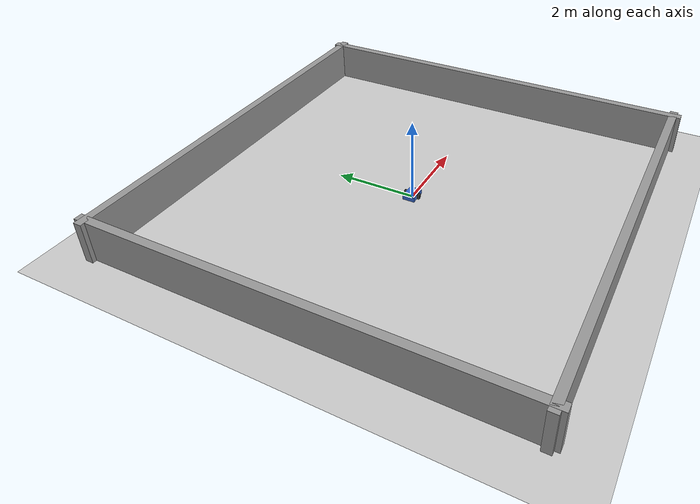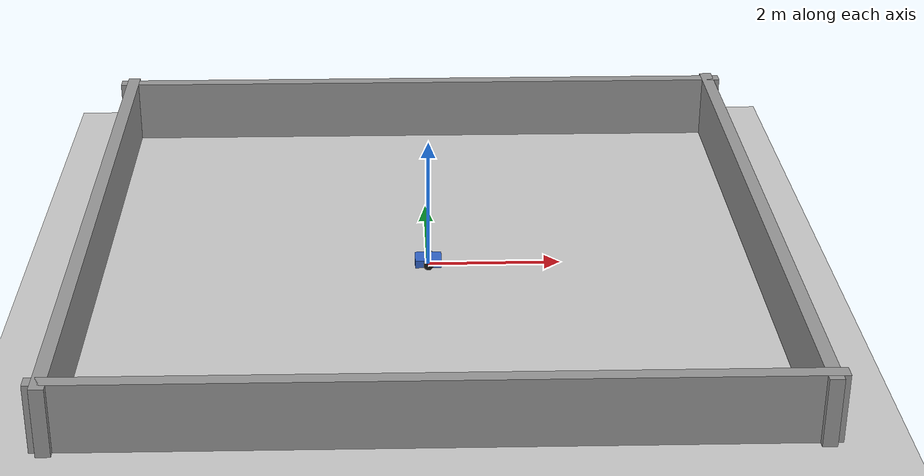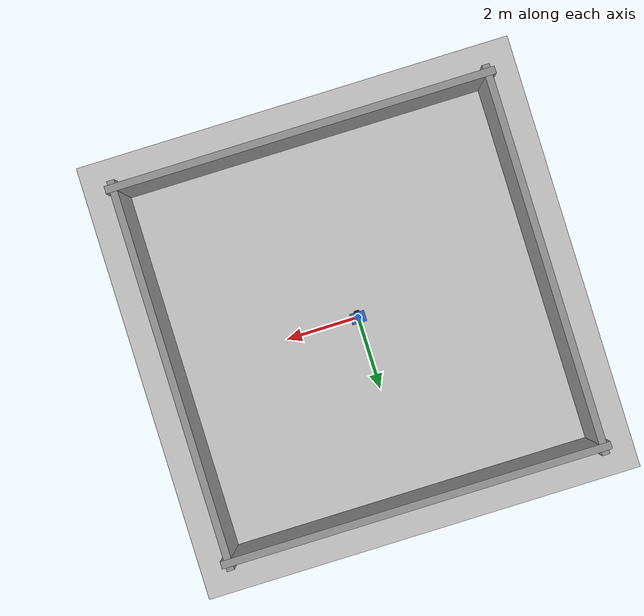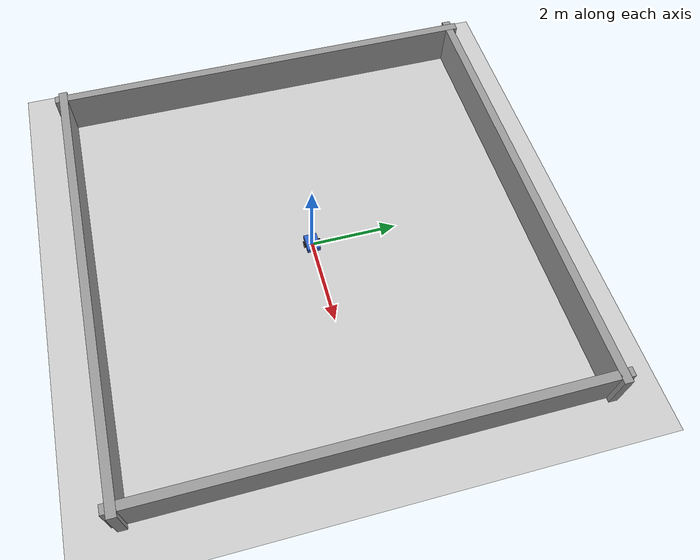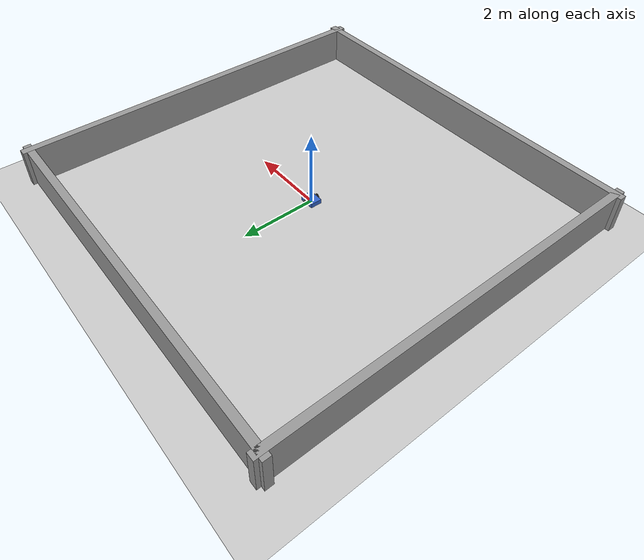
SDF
<?xml version="1.0" ?>
<!--
  Differential-drive robot with a 360-sample GPU lidar.

  Drive it:
    gz topic -t "/cmd_vel" -m gz.msgs.Twist -p "linear: {x: 0.3}, angular: {z: 0.2}"

  Read the lidar:
    gz topic -e -t /scan
-->
<sdf version="1.9">
  <world name="diffbot_world">

    <physics name="1ms" type="ignored">
      <max_step_size>0.001</max_step_size>
      <real_time_factor>1.0</real_time_factor>
    </physics>

    <plugin filename="gz-sim-physics-system" name="gz::sim::systems::Physics">
    </plugin>
    <plugin filename="gz-sim-user-commands-system" name="gz::sim::systems::UserCommands">
    </plugin>
    <plugin filename="gz-sim-scene-broadcaster-system" name="gz::sim::systems::SceneBroadcaster">
    </plugin>
    <plugin filename="gz-sim-sensors-system" name="gz::sim::systems::Sensors">
      <render_engine>ogre2</render_engine>
    </plugin>

    <light type="directional" name="sun">
      <cast_shadows>true</cast_shadows>
      <pose>0 0 10 0 0 0</pose>
      <diffuse>0.8 0.8 0.8 1</diffuse>
      <specular>0.2 0.2 0.2 1</specular>
      <attenuation>
        <range>1000</range>
        <constant>0.9</constant>
        <linear>0.01</linear>
        <quadratic>0.001</quadratic>
      </attenuation>
      <direction>-0.5 0.1 -0.9</direction>
    </light>

    <model name="ground_plane">
      <static>true</static>
      <link name="link">
        <collision name="collision">
          <geometry>
            <plane>
              <normal>0 0 1</normal>
              <size>100 100</size>
            </plane>
          </geometry>
        </collision>
        <visual name="visual">
          <geometry>
            <plane>
              <normal>0 0 1</normal>
              <size>100 100</size>
            </plane>
          </geometry>
          <material>
            <ambient>0.8 0.8 0.8 1</ambient>
            <diffuse>0.8 0.8 0.8 1</diffuse>
            <specular>0.8 0.8 0.8 1</specular>
          </material>
        </visual>
      </link>
    </model>

    <!-- Enclosing arena walls, so every one of the 360 lidar rays hits a
         surface and returns a finite range no matter the robot's heading. -->
    <model name="arena_wall_north">
      <static>true</static>
      <pose>0 5 0.5 0 0 0</pose>
      <link name="link">
        <collision name="collision">
          <geometry><box><size>10.4 0.2 1.0</size></box></geometry>
        </collision>
        <visual name="visual">
          <geometry><box><size>10.4 0.2 1.0</size></box></geometry>
          <material>
            <ambient>0.6 0.6 0.6 1</ambient>
            <diffuse>0.6 0.6 0.6 1</diffuse>
          </material>
        </visual>
      </link>
    </model>
    <model name="arena_wall_south">
      <static>true</static>
      <pose>0 -5 0.5 0 0 0</pose>
      <link name="link">
        <collision name="collision">
          <geometry><box><size>10.4 0.2 1.0</size></box></geometry>
        </collision>
        <visual name="visual">
          <geometry><box><size>10.4 0.2 1.0</size></box></geometry>
          <material>
            <ambient>0.6 0.6 0.6 1</ambient>
            <diffuse>0.6 0.6 0.6 1</diffuse>
          </material>
        </visual>
      </link>
    </model>
    <model name="arena_wall_east">
      <static>true</static>
      <pose>5 0 0.5 0 0 1.5707963</pose>
      <link name="link">
        <collision name="collision">
          <geometry><box><size>10.4 0.2 1.0</size></box></geometry>
        </collision>
        <visual name="visual">
          <geometry><box><size>10.4 0.2 1.0</size></box></geometry>
          <material>
            <ambient>0.6 0.6 0.6 1</ambient>
            <diffuse>0.6 0.6 0.6 1</diffuse>
          </material>
        </visual>
      </link>
    </model>
    <model name="arena_wall_west">
      <static>true</static>
      <pose>-5 0 0.5 0 0 1.5707963</pose>
      <link name="link">
        <collision name="collision">
          <geometry><box><size>10.4 0.2 1.0</size></box></geometry>
        </collision>
        <visual name="visual">
          <geometry><box><size>10.4 0.2 1.0</size></box></geometry>
          <material>
            <ambient>0.6 0.6 0.6 1</ambient>
            <diffuse>0.6 0.6 0.6 1</diffuse>
          </material>
        </visual>
      </link>
    </model>

    <model name="diffbot">
      <pose>0 0 0.06 0 0 0</pose>

      <link name="chassis">
        <inertial>
          <mass>5.0</mass>
          <inertia>
            <ixx>0.0625</ixx>
            <ixy>0</ixy>
            <ixz>0</ixz>
            <iyy>0.106</iyy>
            <iyz>0</iyz>
            <izz>0.15625</izz>
          </inertia>
        </inertial>
        <visual name="visual">
          <geometry>
            <box><size>0.4 0.3 0.12</size></box>
          </geometry>
          <material>
            <ambient>0.2 0.4 0.8 1</ambient>
            <diffuse>0.2 0.4 0.8 1</diffuse>
            <specular>0.2 0.2 0.2 1</specular>
          </material>
        </visual>
        <collision name="collision">
          <geometry>
            <box><size>0.4 0.3 0.12</size></box>
          </geometry>
        </collision>

        <!-- GPU lidar mounted above the chassis so its horizontal scan
             plane clears the robot's own body. -->
        <sensor name="gpu_lidar" type="gpu_lidar">
          <pose>0 0 0.12 0 0 0</pose>
          <topic>scan</topic>
          <update_rate>10</update_rate>
          <always_on>1</always_on>
          <visualize>true</visualize>
          <lidar>
            <scan>
              <horizontal>
                <samples>360</samples>
                <resolution>1</resolution>
                <min_angle>-3.141592653589793</min_angle>
                <max_angle>3.141592653589793</max_angle>
              </horizontal>
              <vertical>
                <samples>1</samples>
                <resolution>1</resolution>
                <min_angle>0</min_angle>
                <max_angle>0</max_angle>
              </vertical>
            </scan>
            <range>
              <min>0.1</min>
              <max>15.0</max>
              <resolution>0.01</resolution>
            </range>
          </lidar>
        </sensor>
      </link>

      <link name="left_wheel">
        <pose>0 0.175 0 -1.5707963 0 0</pose>
        <inertial>
          <mass>0.3</mass>
          <inertia>
            <ixx>0.000216</ixx>
            <ixy>0</ixy>
            <ixz>0</ixz>
            <iyy>0.000216</iyy>
            <iyz>0</iyz>
            <izz>0.000375</izz>
          </inertia>
        </inertial>
        <visual name="visual">
          <geometry>
            <cylinder><radius>0.075</radius><length>0.04</length></cylinder>
          </geometry>
          <material>
            <ambient>0.1 0.1 0.1 1</ambient>
            <diffuse>0.1 0.1 0.1 1</diffuse>
          </material>
        </visual>
        <collision name="collision">
          <geometry>
            <cylinder><radius>0.075</radius><length>0.04</length></cylinder>
          </geometry>
          <surface>
            <friction>
              <ode>
                <mu>1.0</mu>
                <mu2>1.0</mu2>
              </ode>
            </friction>
          </surface>
        </collision>
      </link>

      <link name="right_wheel">
        <pose>0 -0.175 0 -1.5707963 0 0</pose>
        <inertial>
          <mass>0.3</mass>
          <inertia>
            <ixx>0.000216</ixx>
            <ixy>0</ixy>
            <ixz>0</ixz>
            <iyy>0.000216</iyy>
            <iyz>0</iyz>
            <izz>0.000375</izz>
          </inertia>
        </inertial>
        <visual name="visual">
          <geometry>
            <cylinder><radius>0.075</radius><length>0.04</length></cylinder>
          </geometry>
          <material>
            <ambient>0.1 0.1 0.1 1</ambient>
            <diffuse>0.1 0.1 0.1 1</diffuse>
          </material>
        </visual>
        <collision name="collision">
          <geometry>
            <cylinder><radius>0.075</radius><length>0.04</length></cylinder>
          </geometry>
          <surface>
            <friction>
              <ode>
                <mu>1.0</mu>
                <mu2>1.0</mu2>
              </ode>
            </friction>
          </surface>
        </collision>
      </link>

      <link name="caster">
        <pose>0.15 0 -0.045 0 0 0</pose>
        <inertial>
          <mass>0.1</mass>
          <inertia>
            <ixx>0.00004</ixx>
            <ixy>0</ixy>
            <ixz>0</ixz>
            <iyy>0.00004</iyy>
            <iyz>0</iyz>
            <izz>0.00004</izz>
          </inertia>
        </inertial>
        <visual name="visual">
          <geometry><sphere><radius>0.03</radius></sphere></geometry>
          <material>
            <ambient>0.1 0.1 0.1 1</ambient>
            <diffuse>0.1 0.1 0.1 1</diffuse>
          </material>
        </visual>
        <collision name="collision">
          <geometry><sphere><radius>0.03</radius></sphere></geometry>
          <surface>
            <friction>
              <ode>
                <mu>0.01</mu>
                <mu2>0.01</mu2>
              </ode>
            </friction>
          </surface>
        </collision>
      </link>

      <joint name="left_wheel_joint" type="revolute">
        <parent>chassis</parent>
        <child>left_wheel</child>
        <axis>
          <xyz>0 0 1</xyz>
          <limit>
            <lower>-1.79769e+308</lower>
            <upper>1.79769e+308</upper>
          </limit>
        </axis>
      </joint>

      <joint name="right_wheel_joint" type="revolute">
        <parent>chassis</parent>
        <child>right_wheel</child>
        <axis>
          <xyz>0 0 1</xyz>
          <limit>
            <lower>-1.79769e+308</lower>
            <upper>1.79769e+308</upper>
          </limit>
        </axis>
      </joint>

      <joint name="caster_joint" type="ball">
        <parent>chassis</parent>
        <child>caster</child>
      </joint>

      <plugin filename="gz-sim-diff-drive-system" name="gz::sim::systems::DiffDrive">
        <left_joint>left_wheel_joint</left_joint>
        <right_joint>right_wheel_joint</right_joint>
        <wheel_separation>0.35</wheel_separation>
        <wheel_radius>0.075</wheel_radius>
        <topic>/cmd_vel</topic>
        <odom_topic>/odom</odom_topic>
        <frame_id>odom</frame_id>
        <child_frame_id>diffbot/chassis</child_frame_id>
        <odom_publish_frequency>20</odom_publish_frequency>
        <max_linear_acceleration>2</max_linear_acceleration>
        <min_linear_acceleration>-2</min_linear_acceleration>
        <max_angular_acceleration>4</max_angular_acceleration>
        <min_angular_acceleration>-4</min_angular_acceleration>
        <max_linear_velocity>1.0</max_linear_velocity>
        <min_linear_velocity>-1.0</min_linear_velocity>
        <max_angular_velocity>2</max_angular_velocity>
        <min_angular_velocity>-2</min_angular_velocity>
      </plugin>

    </model>

  </world>
</sdf>
